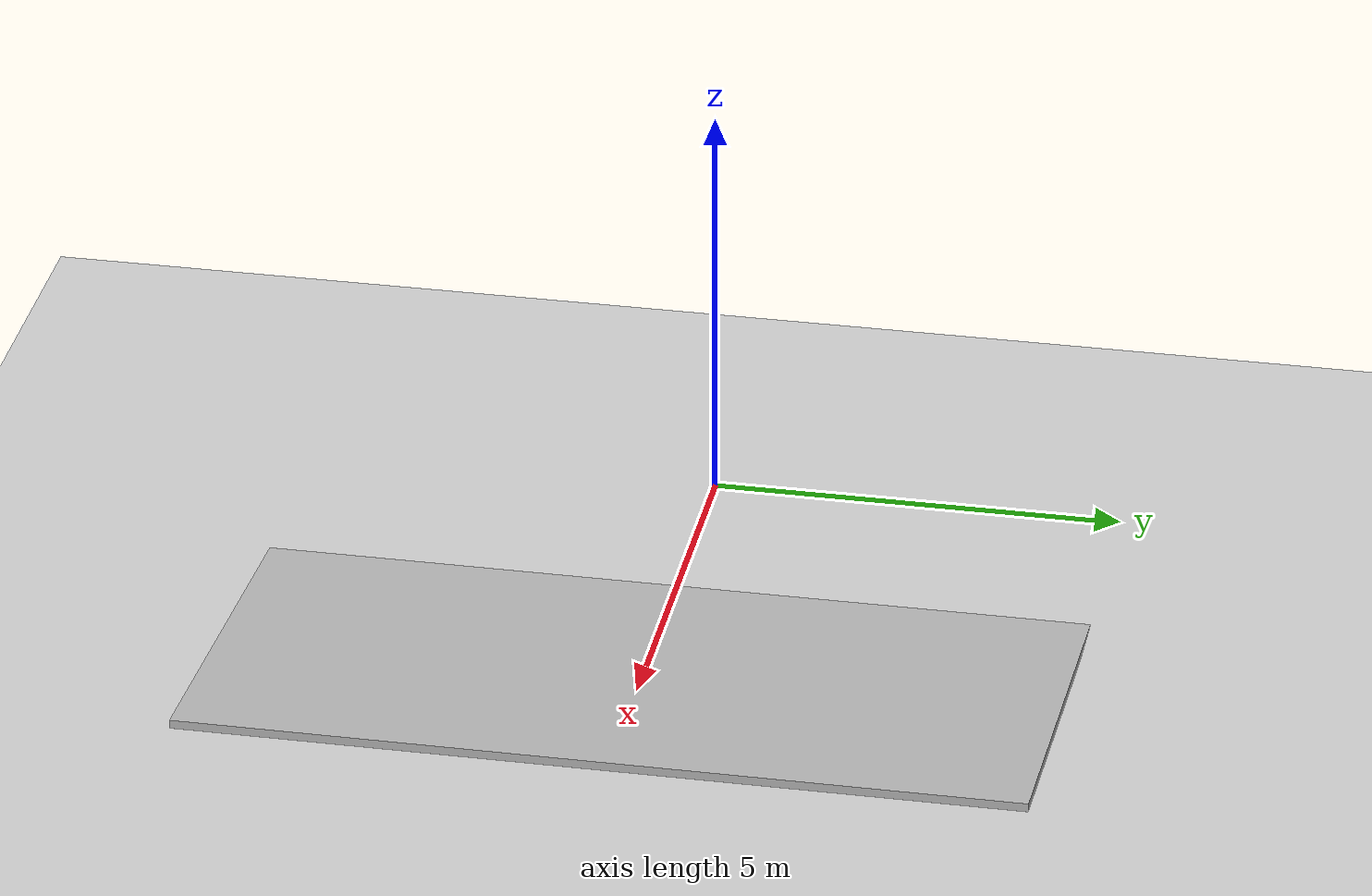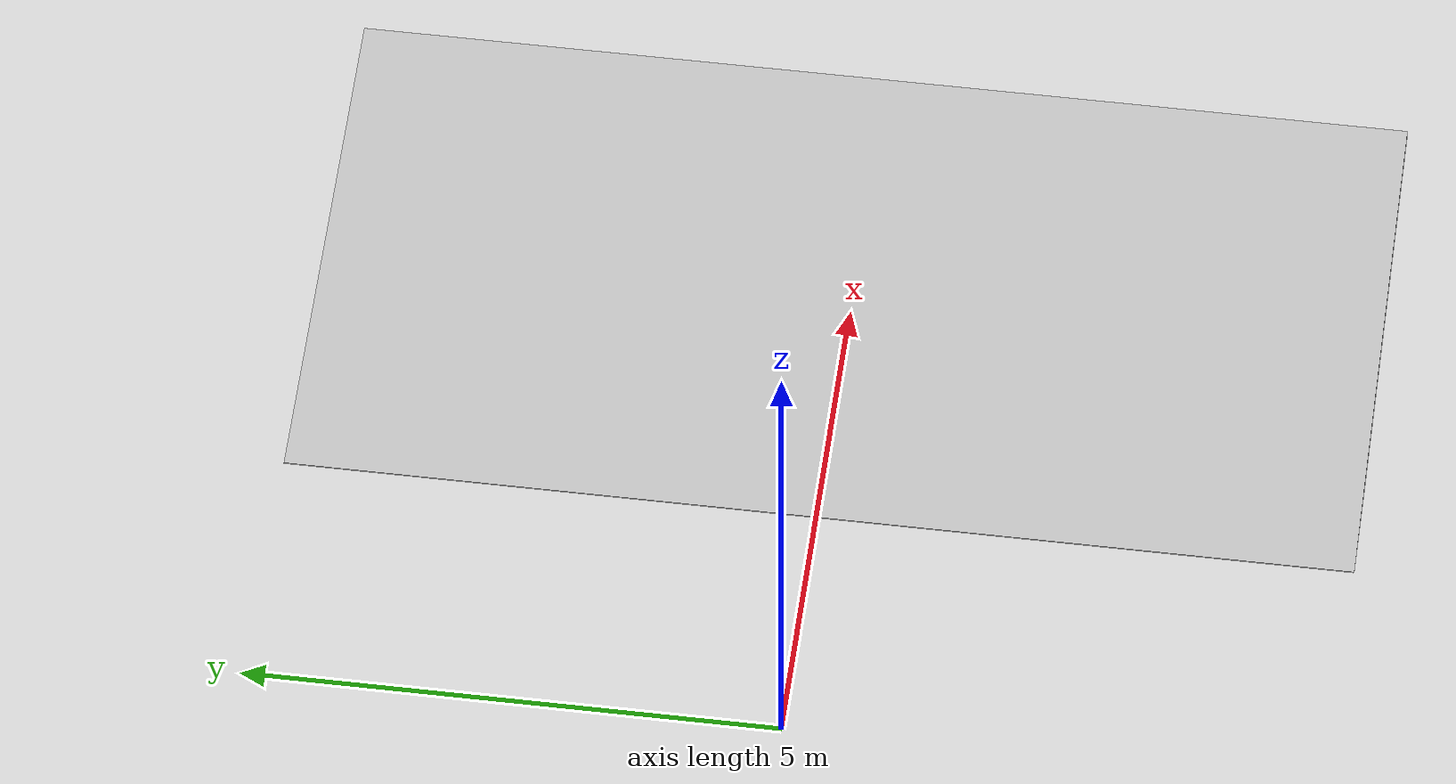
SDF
<?xml version="1.0" ?>
<sdf version="1.4">
  <world name="default">
    <include>
      <uri>model://ground_plane</uri>
    </include>
    <include>
      <uri>model://sun</uri>
    </include>
    <model name="box">
      <static>true</static>

      <pose>5 0 0.2 0 -0.1 0</pose>
      <link name="link">
        <collision name="collision">
          <geometry>
            <box>
              <size>5 10 .1</size>
            </box>
          </geometry>
        </collision>
        <visual name="visual">
          <geometry>
            <box>
              <size>5 10 .1</size>
            </box>
          </geometry>
        </visual>
      </link>
    </model>
  </world>
</sdf>
